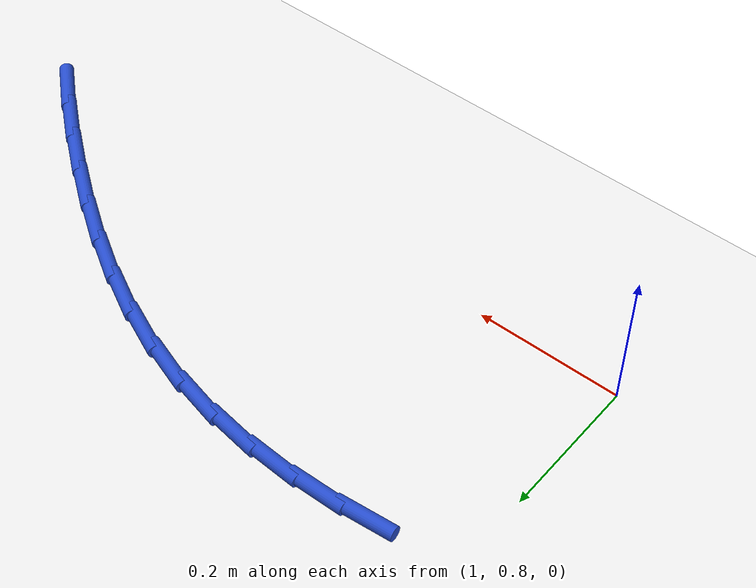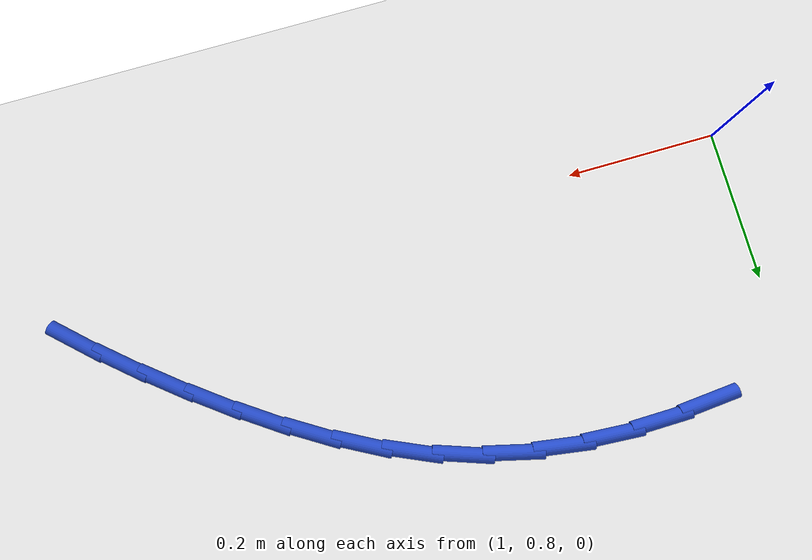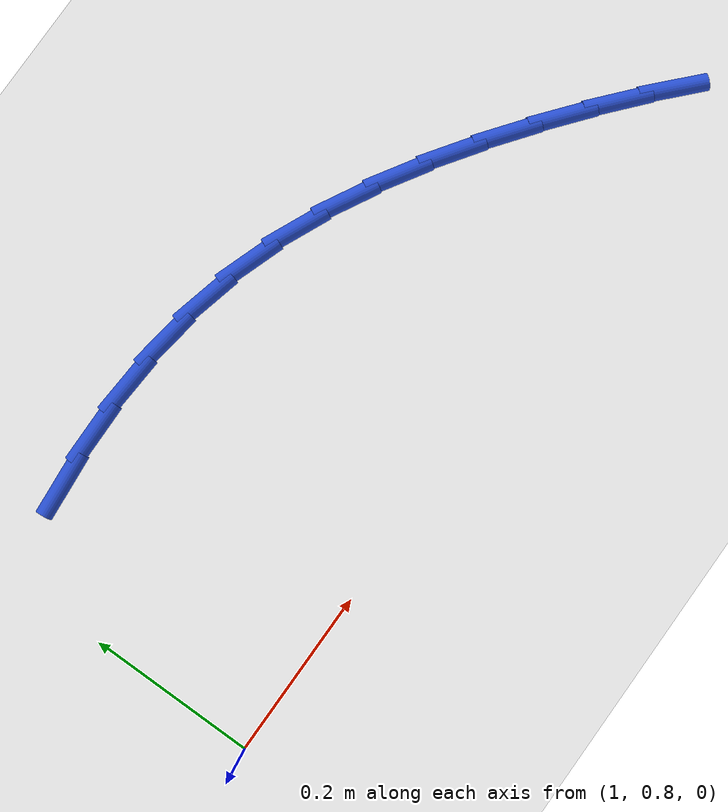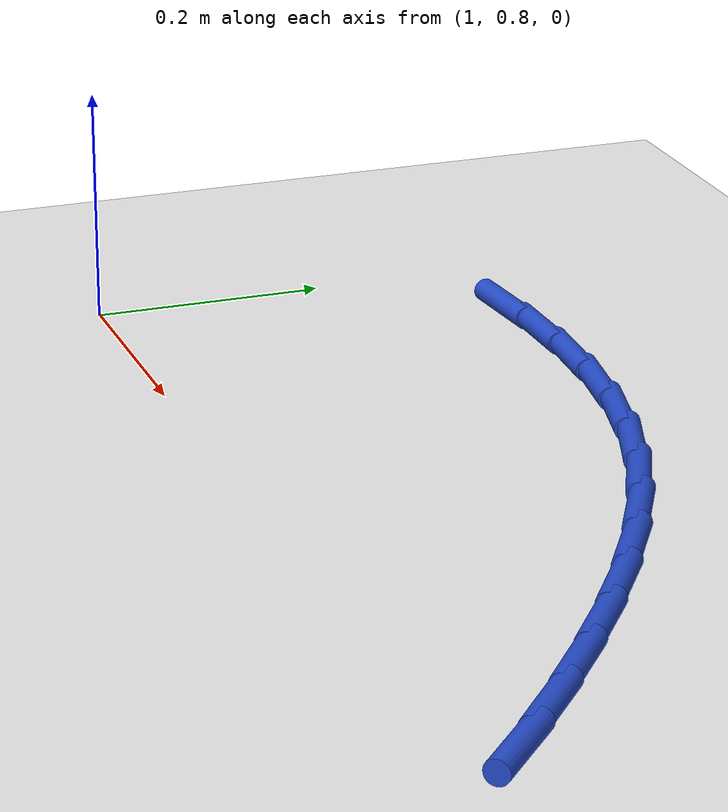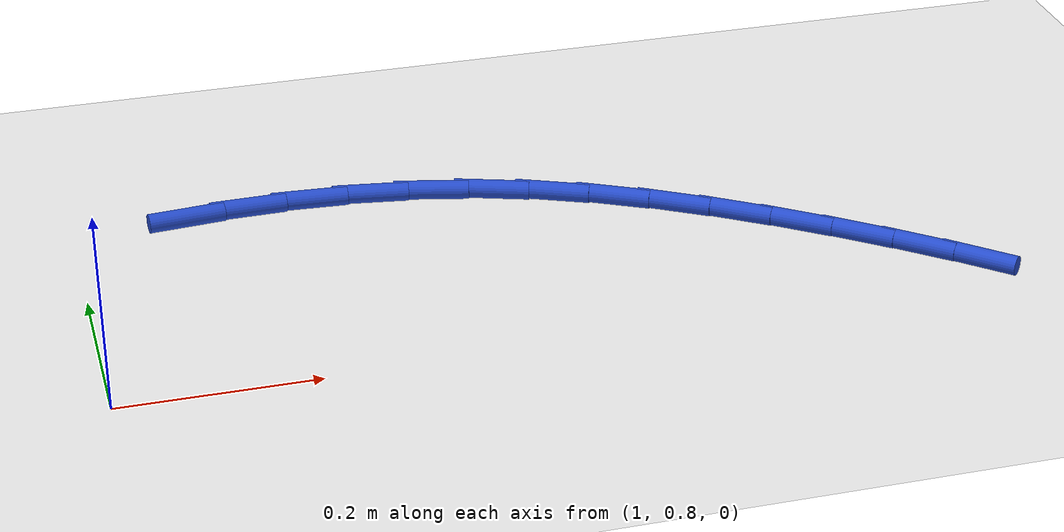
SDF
<sdf version="1.6">
 <world name="default">
  <model name="ground_plane">
   <static>1</static>
   <link name="link">
    <collision name="collision">
     <geometry><plane><normal>0 0 1</normal><size>100 100</size></plane></geometry>
     <surface><friction><ode><mu>100</mu><mu2>50</mu2></ode></friction></surface>
    </collision>
    <visual name="visual">
     <cast_shadows>0</cast_shadows>
     <geometry><plane><normal>0 0 1</normal><size>100 100</size></plane></geometry>
     <material>
      <script><uri>file://media/materials/scripts/gazebo.material</uri><name>Gazebo/WhiteGlow</name></script>
     </material>
    </visual>
   </link>
  </model>
  <model name="line">
   <link name="link_26">
    <pose>1.1181031271486153 1.1342321672324867 0.01 0 1.57 0.08896224673218342</pose>
    <collision name="collision">
     <geometry><cylinder><radius>0.01</radius><length>0.08</length></cylinder></geometry>
    </collision>
    <visual name="visual">
     <material>
      <script><name>Gazebo/Blue</name><uri>file://media/materials/scripts/gazebo.material</uri></script>
     </material>
     <geometry><cylinder><radius>0.01</radius><length>0.08</length></cylinder></geometry>
    </visual>
   </link>
   <link name="link_27">
    <pose>1.1838593467096654 1.1400974696492012 0.01 0 1.57 0.016319434914287247</pose>
    <collision name="collision">
     <geometry><cylinder><radius>0.01</radius><length>0.08</length></cylinder></geometry>
    </collision>
    <visual name="visual">
     <material>
      <script><name>Gazebo/Blue</name><uri>file://media/materials/scripts/gazebo.material</uri></script>
     </material>
     <geometry><cylinder><radius>0.01</radius><length>0.08</length></cylinder></geometry>
    </visual>
   </link>
   <link name="link_28">
    <pose>1.249166190035033 1.1411633350518173 0.01 0 1.57 -0.06260700245112981</pose>
    <collision name="collision">
     <geometry><cylinder><radius>0.01</radius><length>0.08</length></cylinder></geometry>
    </collision>
    <visual name="visual">
     <material>
      <script><name>Gazebo/Blue</name><uri>file://media/materials/scripts/gazebo.material</uri></script>
     </material>
     <geometry><cylinder><radius>0.01</radius><length>0.08</length></cylinder></geometry>
    </visual>
   </link>
   <link name="link_29">
    <pose>1.313762717951807 1.137113847847507 0.01 0 1.57 -0.14792087598738599</pose>
    <collision name="collision">
     <geometry><cylinder><radius>0.01</radius><length>0.08</length></cylinder></geometry>
    </collision>
    <visual name="visual">
     <material>
      <script><name>Gazebo/Blue</name><uri>file://media/materials/scripts/gazebo.material</uri></script>
     </material>
     <geometry><cylinder><radius>0.01</radius><length>0.08</length></cylinder></geometry>
    </visual>
   </link>
   <link name="link_30">
    <pose>1.3773879912870755 1.12763309244344 0.01 0 1.57 -0.23938460760673544</pose>
    <collision name="collision">
     <geometry><cylinder><radius>0.01</radius><length>0.08</length></cylinder></geometry>
    </collision>
    <visual name="visual">
     <material>
      <script><name>Gazebo/Blue</name><uri>file://media/materials/scripts/gazebo.material</uri></script>
     </material>
     <geometry><cylinder><radius>0.01</radius><length>0.08</length></cylinder></geometry>
    </visual>
   </link>
   <link name="link_31">
    <pose>1.439781070867927 1.112405153246789 0.01 0 1.57 -0.3344200093767385</pose>
    <collision name="collision">
     <geometry><cylinder><radius>0.01</radius><length>0.08</length></cylinder></geometry>
    </collision>
    <visual name="visual">
     <material>
      <script><name>Gazebo/Blue</name><uri>file://media/materials/scripts/gazebo.material</uri></script>
     </material>
     <geometry><cylinder><radius>0.01</radius><length>0.08</length></cylinder></geometry>
    </visual>
   </link>
   <link name="link_32">
    <pose>1.50070243806343 1.0912367468551667 0.01 0 1.57 -0.4207446148768258</pose>
    <collision name="collision">
     <geometry><cylinder><radius>0.01</radius><length>0.08</length></cylinder></geometry>
    </collision>
    <visual name="visual">
     <material>
      <script><name>Gazebo/Blue</name><uri>file://media/materials/scripts/gazebo.material</uri></script>
     </material>
     <geometry><cylinder><radius>0.01</radius><length>0.08</length></cylinder></geometry>
    </visual>
   </link>
   <link name="link_33">
    <pose>1.5600434197422999 1.06468367783261 0.01 0 1.57 -0.4943337318100708</pose>
    <collision name="collision">
     <geometry><cylinder><radius>0.01</radius><length>0.08</length></cylinder></geometry>
    </collision>
    <visual name="visual">
     <material>
      <script><name>Gazebo/Blue</name><uri>file://media/materials/scripts/gazebo.material</uri></script>
     </material>
     <geometry><cylinder><radius>0.01</radius><length>0.08</length></cylinder></geometry>
    </visual>
   </link>
   <link name="link_34">
    <pose>1.6177447363268622 1.0335845278866365 0.01 0 1.57 -0.5560861653247169</pose>
    <collision name="collision">
     <geometry><cylinder><radius>0.01</radius><length>0.08</length></cylinder></geometry>
    </collision>
    <visual name="visual">
     <material>
      <script><name>Gazebo/Blue</name><uri>file://media/materials/scripts/gazebo.material</uri></script>
     </material>
     <geometry><cylinder><radius>0.01</radius><length>0.08</length></cylinder></geometry>
    </visual>
   </link>
   <link name="link_35">
    <pose>1.6737471996341522 0.9987784019577237 0.01 0 1.57 -0.6070406393076615</pose>
    <collision name="collision">
     <geometry><cylinder><radius>0.01</radius><length>0.08</length></cylinder></geometry>
    </collision>
    <visual name="visual">
     <material>
      <script><name>Gazebo/Blue</name><uri>file://media/materials/scripts/gazebo.material</uri></script>
     </material>
     <geometry><cylinder><radius>0.01</radius><length>0.08</length></cylinder></geometry>
    </visual>
   </link>
   <link name="link_36">
    <pose>1.7279916214812077 0.9611044049863512 0.01 0 1.57 -0.6481525239618274</pose>
    <collision name="collision">
     <geometry><cylinder><radius>0.01</radius><length>0.08</length></cylinder></geometry>
    </collision>
    <visual name="visual">
     <material>
      <script><name>Gazebo/Blue</name><uri>file://media/materials/scripts/gazebo.material</uri></script>
     </material>
     <geometry><cylinder><radius>0.01</radius><length>0.08</length></cylinder></geometry>
    </visual>
   </link>
   <link name="link_37">
    <pose>1.7804188136850638 0.9214016419129979 0.01 0 1.57 -0.6818083837638662</pose>
    <collision name="collision">
     <geometry><cylinder><radius>0.01</radius><length>0.08</length></cylinder></geometry>
    </collision>
    <visual name="visual">
     <material>
      <script><name>Gazebo/Blue</name><uri>file://media/materials/scripts/gazebo.material</uri></script>
     </material>
     <geometry><cylinder><radius>0.01</radius><length>0.08</length></cylinder></geometry>
    </visual>
   </link>
   <link name="link_38">
    <pose>1.8309797177764888 0.8803635451130666 0.01 0 1.57 -0.7159932242664419</pose>
    <collision name="collision">
     <geometry><cylinder><radius>0.01</radius><length>0.08</length></cylinder></geometry>
    </collision>
    <visual name="visual">
     <material>
      <script><name>Gazebo/Blue</name><uri>file://media/materials/scripts/gazebo.material</uri></script>
     </material>
     <geometry><cylinder><radius>0.01</radius><length>0.08</length></cylinder></geometry>
    </visual>
   </link>
   <link name="link_39">
    <pose>1.8796727795964034 0.8380004008341767 0.01 0 1.57 -0.752784808716549</pose>
    <collision name="collision">
     <geometry><cylinder><radius>0.01</radius><length>0.08</length></cylinder></geometry>
    </collision>
    <visual name="visual">
     <material>
      <script><name>Gazebo/Blue</name><uri>file://media/materials/scripts/gazebo.material</uri></script>
     </material>
     <geometry><cylinder><radius>0.01</radius><length>0.08</length></cylinder></geometry>
    </visual>
   </link>
  </model>
 </world>
</sdf>
